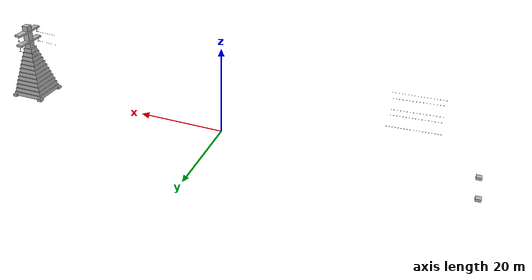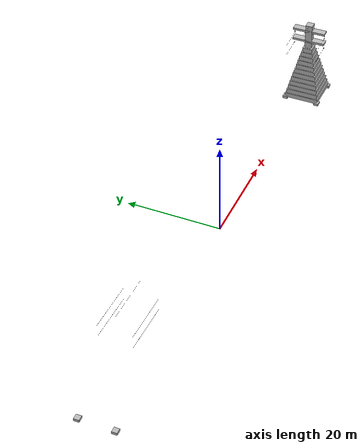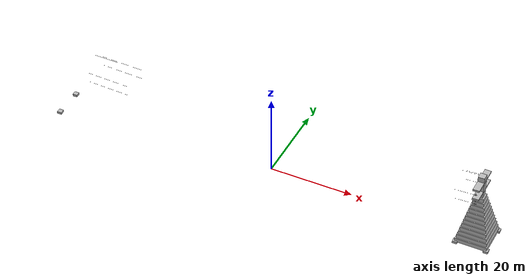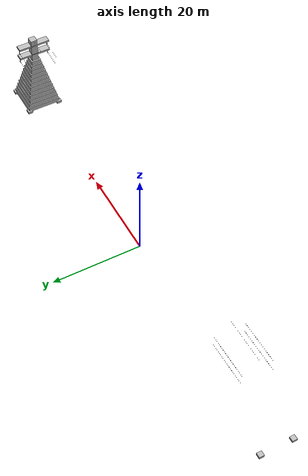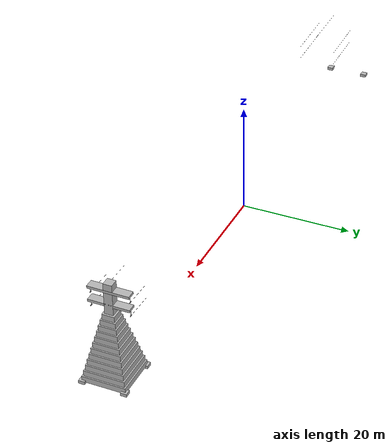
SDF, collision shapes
<sdf version="1.10">
 <model name="powerline_corridor">
  <static>true</static>
  <link name="span_collision_9">
   <collision name="footing_0_0_collision">
    <pose>-53.6 -3.6 0.05 0 0 0</pose>
    <geometry><box><size>1.1 1.1 0.55</size></box></geometry>
   </collision>
   <collision name="footing_0_1_collision">
    <pose>-53.6 3.6 0.05 0 0 0</pose>
    <geometry><box><size>1.1 1.1 0.55</size></box></geometry>
   </collision>
  </link>
  <link name="span_collision_30">
   <collision name="tower_1_envelope_0">
    <pose>50 0 0.5 0 0 0</pose>
    <geometry><box><size>7.54 7.54 1</size></box></geometry>
   </collision>
   <collision name="tower_1_envelope_1">
    <pose>50 0 1.5 0 0 0</pose>
    <geometry><box><size>7.05 7.05 1</size></box></geometry>
   </collision>
   <collision name="tower_1_envelope_2">
    <pose>50 0 2.5 0 0 0</pose>
    <geometry><box><size>6.5600000000000005 6.5600000000000005 1</size></box></geometry>
   </collision>
   <collision name="tower_1_envelope_3">
    <pose>50 0 3.5 0 0 0</pose>
    <geometry><box><size>6.07 6.07 1</size></box></geometry>
   </collision>
   <collision name="tower_1_envelope_4">
    <pose>50 0 4.5 0 0 0</pose>
    <geometry><box><size>5.58 5.58 1</size></box></geometry>
   </collision>
   <collision name="tower_1_envelope_5">
    <pose>50 0 5.5 0 0 0</pose>
    <geometry><box><size>5.09 5.09 1</size></box></geometry>
   </collision>
   <collision name="tower_1_envelope_6">
    <pose>50 0 6.5 0 0 0</pose>
    <geometry><box><size>4.6 4.6 1</size></box></geometry>
   </collision>
   <collision name="tower_1_envelope_7">
    <pose>50 0 7.5 0 0 0</pose>
    <geometry><box><size>4.11 4.11 1</size></box></geometry>
   </collision>
   <collision name="tower_1_envelope_8">
    <pose>50 0 8.5 0 0 0</pose>
    <geometry><box><size>3.62 3.62 1</size></box></geometry>
   </collision>
   <collision name="tower_1_envelope_9">
    <pose>50 0 9.5 0 0 0</pose>
    <geometry><box><size>3.13 3.13 1</size></box></geometry>
   </collision>
   <collision name="tower_1_envelope_10">
    <pose>50 0 10.5 0 0 0</pose>
    <geometry><box><size>2.6399999999999997 2.6399999999999997 1</size></box></geometry>
   </collision>
   <collision name="tower_1_envelope_11">
    <pose>50 0 11.5 0 0 0</pose>
    <geometry><box><size>2.1500000000000004 2.1500000000000004 1</size></box></geometry>
   </collision>
   <collision name="tower_1_arm_0">
    <pose>50 0 13.65 0 0 0</pose>
    <geometry><box><size>1.5 7.1 .45</size></box></geometry>
   </collision>
   <collision name="tower_1_arm_1">
    <pose>50 0 16.15 0 0 0</pose>
    <geometry><box><size>1.5 7.1 .45</size></box></geometry>
   </collision>
   <collision name="tower_1_upper_core">
    <pose>50 0 14.8 0 0 0</pose>
    <geometry><box><size>1.5 1.5 5.6</size></box></geometry>
   </collision>
   <collision name="footing_1_2_collision">
    <pose>53.6 -3.6 0.05 0 0 0</pose>
    <geometry><box><size>1.1 1.1 0.55</size></box></geometry>
   </collision>
   <collision name="footing_1_3_collision">
    <pose>53.6 3.6 0.05 0 0 0</pose>
    <geometry><box><size>1.1 1.1 0.55</size></box></geometry>
   </collision>
   <collision name="phase_0_0_core_1_collision">
    <pose>50.0 -3.35 12.837 0 0.0 0.0</pose>
    <geometry><cylinder><radius>0.035</radius><length>1.0999999999999996</length></cylinder></geometry>
   </collision>
   <collision name="phase_0_0_clamp_1_collision">
    <pose>50 -3.35 12.287 0 0 0</pose>
    <geometry><box><size>0.46 0.1 0.1</size></box></geometry>
   </collision>
   <collision name="phase_0_1_core_1_collision">
    <pose>50.0 3.35 12.837 0 0.0 0.0</pose>
    <geometry><cylinder><radius>0.035</radius><length>1.0999999999999996</length></cylinder></geometry>
   </collision>
   <collision name="phase_0_1_clamp_1_collision">
    <pose>50 3.35 12.287 0 0 0</pose>
    <geometry><box><size>0.46 0.1 0.1</size></box></geometry>
   </collision>
   <collision name="phase_1_0_core_1_collision">
    <pose>50.0 -3.35 15.337 0 0.0 0.0</pose>
    <geometry><cylinder><radius>0.035</radius><length>1.0999999999999996</length></cylinder></geometry>
   </collision>
   <collision name="phase_1_0_clamp_1_collision">
    <pose>50 -3.35 14.787 0 0 0</pose>
    <geometry><box><size>0.46 0.1 0.1</size></box></geometry>
   </collision>
   <collision name="phase_1_1_core_1_collision">
    <pose>50.0 3.35 15.337 0 0.0 0.0</pose>
    <geometry><cylinder><radius>0.035</radius><length>1.0999999999999996</length></cylinder></geometry>
   </collision>
   <collision name="phase_1_1_clamp_1_collision">
    <pose>50 3.35 14.787 0 0 0</pose>
    <geometry><box><size>0.46 0.1 0.1</size></box></geometry>
   </collision>
  </link>
  <link name="span_collision_29">
   <collision name="footing_1_0_collision">
    <pose>46.4 -3.6 0.05 0 0 0</pose>
    <geometry><box><size>1.1 1.1 0.55</size></box></geometry>
   </collision>
   <collision name="footing_1_1_collision">
    <pose>46.4 3.6 0.05 0 0 0</pose>
    <geometry><box><size>1.1 1.1 0.55</size></box></geometry>
   </collision>
   <collision name="phase_0_0_95_collision">
    <pose>45.5 -3.35 12.072168283998106 0 1.525312016177559 0.0</pose>
    <geometry><cylinder><radius>0.012</radius><length>1.0010353036791855</length></cylinder></geometry>
   </collision>
   <collision name="phase_0_0_96_collision">
    <pose>46.5 -3.35 12.118184516050576 0 1.5243130732457189 0.0</pose>
    <geometry><cylinder><radius>0.012</radius><length>1.0010813199093092</length></cylinder></geometry>
   </collision>
   <collision name="phase_0_0_97_collision">
    <pose>47.5 -3.35 12.165201829631386 0 1.5233141767299454 0.0</pose>
    <geometry><cylinder><radius>0.012</radius><length>1.0011283372209305</length></cylinder></geometry>
   </collision>
   <collision name="phase_0_0_98_collision">
    <pose>48.5 -3.35 12.213220271757926 0 1.5223153276250772 0.0</pose>
    <geometry><cylinder><radius>0.012</radius><length>1.001176355661051</length></cylinder></geometry>
   </collision>
   <collision name="phase_0_0_99_collision">
    <pose>49.5 -3.35 12.262239890448676 0 1.521316526925099 0.0</pose>
    <geometry><cylinder><radius>0.012</radius><length>1.0012253752777016</length></cylinder></geometry>
   </collision>
   <collision name="phase_0_1_95_collision">
    <pose>45.5 3.35 12.072168283998106 0 1.525312016177559 0.0</pose>
    <geometry><cylinder><radius>0.012</radius><length>1.0010353036791855</length></cylinder></geometry>
   </collision>
   <collision name="phase_0_1_96_collision">
    <pose>46.5 3.35 12.118184516050576 0 1.5243130732457189 0.0</pose>
    <geometry><cylinder><radius>0.012</radius><length>1.0010813199093092</length></cylinder></geometry>
   </collision>
   <collision name="phase_0_1_97_collision">
    <pose>47.5 3.35 12.165201829631386 0 1.5233141767299454 0.0</pose>
    <geometry><cylinder><radius>0.012</radius><length>1.0011283372209305</length></cylinder></geometry>
   </collision>
   <collision name="phase_0_1_98_collision">
    <pose>48.5 3.35 12.213220271757926 0 1.5223153276250772 0.0</pose>
    <geometry><cylinder><radius>0.012</radius><length>1.001176355661051</length></cylinder></geometry>
   </collision>
   <collision name="phase_0_1_99_collision">
    <pose>49.5 3.35 12.262239890448676 0 1.521316526925099 0.0</pose>
    <geometry><cylinder><radius>0.012</radius><length>1.0012253752777016</length></cylinder></geometry>
   </collision>
   <collision name="phase_1_0_95_collision">
    <pose>45.5 -3.35 14.572168283998106 0 1.525312016177559 0.0</pose>
    <geometry><cylinder><radius>0.012</radius><length>1.0010353036791855</length></cylinder></geometry>
   </collision>
   <collision name="phase_1_0_96_collision">
    <pose>46.5 -3.35 14.618184516050576 0 1.5243130732457189 0.0</pose>
    <geometry><cylinder><radius>0.012</radius><length>1.0010813199093092</length></cylinder></geometry>
   </collision>
   <collision name="phase_1_0_97_collision">
    <pose>47.5 -3.35 14.665201829631386 0 1.5233141767299454 0.0</pose>
    <geometry><cylinder><radius>0.012</radius><length>1.0011283372209305</length></cylinder></geometry>
   </collision>
   <collision name="phase_1_0_98_collision">
    <pose>48.5 -3.35 14.713220271757926 0 1.5223153276250772 0.0</pose>
    <geometry><cylinder><radius>0.012</radius><length>1.001176355661051</length></cylinder></geometry>
   </collision>
   <collision name="phase_1_0_99_collision">
    <pose>49.5 -3.35 14.762239890448676 0 1.521316526925099 0.0</pose>
    <geometry><cylinder><radius>0.012</radius><length>1.0012253752777016</length></cylinder></geometry>
   </collision>
   <collision name="phase_1_1_95_collision">
    <pose>45.5 3.35 14.572168283998106 0 1.525312016177559 0.0</pose>
    <geometry><cylinder><radius>0.012</radius><length>1.0010353036791855</length></cylinder></geometry>
   </collision>
   <collision name="phase_1_1_96_collision">
    <pose>46.5 3.35 14.618184516050576 0 1.5243130732457189 0.0</pose>
    <geometry><cylinder><radius>0.012</radius><length>1.0010813199093092</length></cylinder></geometry>
   </collision>
   <collision name="phase_1_1_97_collision">
    <pose>47.5 3.35 14.665201829631386 0 1.5233141767299454 0.0</pose>
    <geometry><cylinder><radius>0.012</radius><length>1.0011283372209305</length></cylinder></geometry>
   </collision>
   <collision name="phase_1_1_98_collision">
    <pose>48.5 3.35 14.713220271757926 0 1.5223153276250772 0.0</pose>
    <geometry><cylinder><radius>0.012</radius><length>1.001176355661051</length></cylinder></geometry>
   </collision>
   <collision name="phase_1_1_99_collision">
    <pose>49.5 3.35 14.762239890448676 0 1.521316526925099 0.0</pose>
    <geometry><cylinder><radius>0.012</radius><length>1.0012253752777016</length></cylinder></geometry>
   </collision>
   <collision name="earth_wire_95_collision">
    <pose>45.5 0.0 17.42117617725703 0 1.5435002626091545 0.0</pose>
    <geometry><cylinder><radius>0.008</radius><length>1.0003726532485975</length></cylinder></geometry>
   </collision>
   <collision name="earth_wire_96_collision">
    <pose>46.5 0.0 17.4487791309433 0 1.5429005030509133 0.0</pose>
    <geometry><cylinder><radius>0.008</radius><length>1.0003892146893258</length></cylinder></geometry>
   </collision>
   <collision name="earth_wire_97_collision">
    <pose>47.5 0.0 17.476982306198963 0 1.542300753529131 0.0</pose>
    <geometry><cylinder><radius>0.008</radius><length>1.0004061362557999</length></cylinder></geometry>
   </collision>
   <collision name="earth_wire_98_collision">
    <pose>48.5 0.0 17.50578571317683 0 1.5417010142600511 0.0</pose>
    <geometry><cylinder><radius>0.008</radius><length>1.0004234179540916</length></cylinder></geometry>
   </collision>
   <collision name="earth_wire_99_collision">
    <pose>49.5 0.0 17.535189362245678 0 1.5411012854587842 0.0</pose>
    <geometry><cylinder><radius>0.008</radius><length>1.000441059790435</length></cylinder></geometry>
   </collision>
  </link>
  <link name="span_collision_11">
   <collision name="phase_0_0_5_collision">
    <pose>-44.5 -3.35 12.027153087457783 0 1.6152816490584645 0.0</pose>
    <geometry><cylinder><radius>0.012</radius><length>1.0009902884845165</length></cylinder></geometry>
   </collision>
   <collision name="phase_0_0_6_collision">
    <pose>-43.5 -3.35 11.983138881414398 0 1.6142826162784136 0.0</pose>
    <geometry><cylinder><radius>0.012</radius><length>1.000946274280319</length></cylinder></geometry>
   </collision>
   <collision name="phase_0_0_7_collision">
    <pose>-42.5 -3.35 11.940125621853712 0 1.6132835400665768 0.0</pose>
    <geometry><cylinder><radius>0.012</radius><length>1.0009032610225486</length></cylinder></geometry>
   </collision>
   <collision name="phase_0_0_8_collision">
    <pose>-41.5 -3.35 11.898113265762465 0 1.6122844214189525 0.0</pose>
    <geometry><cylinder><radius>0.012</radius><length>1.0008612486682185</length></cylinder></geometry>
   </collision>
   <collision name="phase_0_0_9_collision">
    <pose>-40.5 -3.35 11.857101771128374 0 1.611285261330379 0.0</pose>
    <geometry><cylinder><radius>0.012</radius><length>1.0008202371752848</length></cylinder></geometry>
   </collision>
   <collision name="phase_0_1_5_collision">
    <pose>-44.5 3.35 12.027153087457783 0 1.6152816490584645 0.0</pose>
    <geometry><cylinder><radius>0.012</radius><length>1.0009902884845165</length></cylinder></geometry>
   </collision>
   <collision name="phase_0_1_6_collision">
    <pose>-43.5 3.35 11.983138881414398 0 1.6142826162784136 0.0</pose>
    <geometry><cylinder><radius>0.012</radius><length>1.000946274280319</length></cylinder></geometry>
   </collision>
   <collision name="phase_0_1_7_collision">
    <pose>-42.5 3.35 11.940125621853712 0 1.6132835400665768 0.0</pose>
    <geometry><cylinder><radius>0.012</radius><length>1.0009032610225486</length></cylinder></geometry>
   </collision>
   <collision name="phase_0_1_8_collision">
    <pose>-41.5 3.35 11.898113265762465 0 1.6122844214189525 0.0</pose>
    <geometry><cylinder><radius>0.012</radius><length>1.0008612486682185</length></cylinder></geometry>
   </collision>
   <collision name="phase_0_1_9_collision">
    <pose>-40.5 3.35 11.857101771128374 0 1.611285261330379 0.0</pose>
    <geometry><cylinder><radius>0.012</radius><length>1.0008202371752848</length></cylinder></geometry>
   </collision>
   <collision name="phase_1_0_5_collision">
    <pose>-44.5 -3.35 14.527153087457783 0 1.6152816490584645 0.0</pose>
    <geometry><cylinder><radius>0.012</radius><length>1.0009902884845165</length></cylinder></geometry>
   </collision>
   <collision name="phase_1_0_6_collision">
    <pose>-43.5 -3.35 14.483138881414398 0 1.6142826162784136 0.0</pose>
    <geometry><cylinder><radius>0.012</radius><length>1.000946274280319</length></cylinder></geometry>
   </collision>
   <collision name="phase_1_0_7_collision">
    <pose>-42.5 -3.35 14.440125621853712 0 1.6132835400665768 0.0</pose>
    <geometry><cylinder><radius>0.012</radius><length>1.0009032610225486</length></cylinder></geometry>
   </collision>
   <collision name="phase_1_0_8_collision">
    <pose>-41.5 -3.35 14.398113265762465 0 1.6122844214189525 0.0</pose>
    <geometry><cylinder><radius>0.012</radius><length>1.0008612486682185</length></cylinder></geometry>
   </collision>
   <collision name="phase_1_0_9_collision">
    <pose>-40.5 -3.35 14.357101771128374 0 1.611285261330379 0.0</pose>
    <geometry><cylinder><radius>0.012</radius><length>1.0008202371752848</length></cylinder></geometry>
   </collision>
   <collision name="phase_1_1_5_collision">
    <pose>-44.5 3.35 14.527153087457783 0 1.6152816490584645 0.0</pose>
    <geometry><cylinder><radius>0.012</radius><length>1.0009902884845165</length></cylinder></geometry>
   </collision>
   <collision name="phase_1_1_6_collision">
    <pose>-43.5 3.35 14.483138881414398 0 1.6142826162784136 0.0</pose>
    <geometry><cylinder><radius>0.012</radius><length>1.000946274280319</length></cylinder></geometry>
   </collision>
   <collision name="phase_1_1_7_collision">
    <pose>-42.5 3.35 14.440125621853712 0 1.6132835400665768 0.0</pose>
    <geometry><cylinder><radius>0.012</radius><length>1.0009032610225486</length></cylinder></geometry>
   </collision>
   <collision name="phase_1_1_8_collision">
    <pose>-41.5 3.35 14.398113265762465 0 1.6122844214189525 0.0</pose>
    <geometry><cylinder><radius>0.012</radius><length>1.0008612486682185</length></cylinder></geometry>
   </collision>
   <collision name="phase_1_1_9_collision">
    <pose>-40.5 3.35 14.357101771128374 0 1.611285261330379 0.0</pose>
    <geometry><cylinder><radius>0.012</radius><length>1.0008202371752848</length></cylinder></geometry>
   </collision>
   <collision name="earth_wire_5_collision">
    <pose>-44.5 0.0 17.394173435203268 0 1.5974926216010892 0.0</pose>
    <geometry><cylinder><radius>0.008</radius><length>1.0003564519276407</length></cylinder></geometry>
   </collision>
   <collision name="earth_wire_6_collision">
    <pose>-43.5 0.0 17.367770895061632 0 1.596892842615392 0.0</pose>
    <geometry><cylinder><radius>0.008</radius><length>1.0003406107206119</length></cylinder></geometry>
   </collision>
   <collision name="earth_wire_7_collision">
    <pose>-42.5 0.0 17.341968547327685 0 1.59629305423983 0.0</pose>
    <geometry><cylinder><radius>0.008</radius><length>1.0003251296218263</length></cylinder></geometry>
   </collision>
   <collision name="earth_wire_8_collision">
    <pose>-41.5 0.0 17.316766382712927 0 1.5956932566896018 0.0</pose>
    <geometry><cylinder><radius>0.008</radius><length>1.0003100086257002</length></cylinder></geometry>
   </collision>
   <collision name="earth_wire_9_collision">
    <pose>-40.5 0.0 17.292164392144805 0 1.5950934501810023 0.0</pose>
    <geometry><cylinder><radius>0.008</radius><length>1.0002952477268061</length></cylinder></geometry>
   </collision>
  </link>
  <link name="span_collision_12">
   <collision name="phase_0_0_10_collision">
    <pose>-39.5 -3.35 11.817091096939912 0 1.6102860607976321 0.0</pose>
    <geometry><cylinder><radius>0.012</radius><length>1.0007802265027759</length></cylinder></geometry>
   </collision>
   <collision name="phase_0_0_11_collision">
    <pose>-38.5 -3.35 11.778081203186305 0 1.6092868208158773 0.0</pose>
    <geometry><cylinder><radius>0.012</radius><length>1.0007412166106466</length></cylinder></geometry>
   </collision>
   <collision name="phase_0_0_12_collision">
    <pose>-37.5 -3.35 11.740072050857872 0 1.6082875423815441 0.0</pose>
    <geometry><cylinder><radius>0.012</radius><length>1.0007032074598972</length></cylinder></geometry>
   </collision>
   <collision name="phase_0_0_13_collision">
    <pose>-36.5 -3.35 11.703063601945239 0 1.6072882264916604 0.0</pose>
    <geometry><cylinder><radius>0.012</radius><length>1.0006661990125416</length></cylinder></geometry>
   </collision>
   <collision name="phase_0_0_14_collision">
    <pose>-35.5 -3.35 11.667055819440005 0 1.6062888741416288 0.0</pose>
    <geometry><cylinder><radius>0.012</radius><length>1.000630191231528</length></cylinder></geometry>
   </collision>
   <collision name="phase_0_1_10_collision">
    <pose>-39.5 3.35 11.817091096939912 0 1.6102860607976321 0.0</pose>
    <geometry><cylinder><radius>0.012</radius><length>1.0007802265027759</length></cylinder></geometry>
   </collision>
   <collision name="phase_0_1_11_collision">
    <pose>-38.5 3.35 11.778081203186305 0 1.6092868208158773 0.0</pose>
    <geometry><cylinder><radius>0.012</radius><length>1.0007412166106466</length></cylinder></geometry>
   </collision>
   <collision name="phase_0_1_12_collision">
    <pose>-37.5 3.35 11.740072050857872 0 1.6082875423815441 0.0</pose>
    <geometry><cylinder><radius>0.012</radius><length>1.0007032074598972</length></cylinder></geometry>
   </collision>
   <collision name="phase_0_1_13_collision">
    <pose>-36.5 3.35 11.703063601945239 0 1.6072882264916604 0.0</pose>
    <geometry><cylinder><radius>0.012</radius><length>1.0006661990125416</length></cylinder></geometry>
   </collision>
   <collision name="phase_0_1_14_collision">
    <pose>-35.5 3.35 11.667055819440005 0 1.6062888741416288 0.0</pose>
    <geometry><cylinder><radius>0.012</radius><length>1.000630191231528</length></cylinder></geometry>
   </collision>
   <collision name="phase_1_0_10_collision">
    <pose>-39.5 -3.35 14.317091096939912 0 1.6102860607976321 0.0</pose>
    <geometry><cylinder><radius>0.012</radius><length>1.0007802265027759</length></cylinder></geometry>
   </collision>
   <collision name="phase_1_0_11_collision">
    <pose>-38.5 -3.35 14.278081203186305 0 1.6092868208158773 0.0</pose>
    <geometry><cylinder><radius>0.012</radius><length>1.0007412166106466</length></cylinder></geometry>
   </collision>
   <collision name="phase_1_0_12_collision">
    <pose>-37.5 -3.35 14.240072050857872 0 1.6082875423815441 0.0</pose>
    <geometry><cylinder><radius>0.012</radius><length>1.0007032074598972</length></cylinder></geometry>
   </collision>
   <collision name="phase_1_0_13_collision">
    <pose>-36.5 -3.35 14.203063601945239 0 1.6072882264916604 0.0</pose>
    <geometry><cylinder><radius>0.012</radius><length>1.0006661990125416</length></cylinder></geometry>
   </collision>
   <collision name="phase_1_0_14_collision">
    <pose>-35.5 -3.35 14.167055819440005 0 1.6062888741416288 0.0</pose>
    <geometry><cylinder><radius>0.012</radius><length>1.000630191231528</length></cylinder></geometry>
   </collision>
   <collision name="phase_1_1_10_collision">
    <pose>-39.5 3.35 14.317091096939912 0 1.6102860607976321 0.0</pose>
    <geometry><cylinder><radius>0.012</radius><length>1.0007802265027759</length></cylinder></geometry>
   </collision>
   <collision name="phase_1_1_11_collision">
    <pose>-38.5 3.35 14.278081203186305 0 1.6092868208158773 0.0</pose>
    <geometry><cylinder><radius>0.012</radius><length>1.0007412166106466</length></cylinder></geometry>
   </collision>
   <collision name="phase_1_1_12_collision">
    <pose>-37.5 3.35 14.240072050857872 0 1.6082875423815441 0.0</pose>
    <geometry><cylinder><radius>0.012</radius><length>1.0007032074598972</length></cylinder></geometry>
   </collision>
   <collision name="phase_1_1_13_collision">
    <pose>-36.5 3.35 14.203063601945239 0 1.6072882264916604 0.0</pose>
    <geometry><cylinder><radius>0.012</radius><length>1.0006661990125416</length></cylinder></geometry>
   </collision>
   <collision name="phase_1_1_14_collision">
    <pose>-35.5 3.35 14.167055819440005 0 1.6062888741416288 0.0</pose>
    <geometry><cylinder><radius>0.012</radius><length>1.000630191231528</length></cylinder></geometry>
   </collision>
   <collision name="earth_wire_10_collision">
    <pose>-39.5 0.0 17.26816256676708 0 1.5944936349285252 0.0</pose>
    <geometry><cylinder><radius>0.008</radius><length>1.000280846919802</length></cylinder></geometry>
   </collision>
   <collision name="earth_wire_11_collision">
    <pose>-38.5 0.0 17.244760897939457 0 1.593893811149237 0.0</pose>
    <geometry><cylinder><radius>0.008</radius><length>1.0002668061995368</length></cylinder></geometry>
   </collision>
   <collision name="earth_wire_12_collision">
    <pose>-37.5 0.0 17.221959377237383 0 1.5932939790580103 0.0</pose>
    <geometry><cylinder><radius>0.008</radius><length>1.0002531255609368</length></cylinder></geometry>
   </collision>
   <collision name="earth_wire_13_collision">
    <pose>-36.5 0.0 17.19975799645301 0 1.5926941388701004 0.0</pose>
    <geometry><cylinder><radius>0.008</radius><length>1.0002398049990675</length></cylinder></geometry>
   </collision>
   <collision name="earth_wire_14_collision">
    <pose>-35.5 0.0 17.178156747594052 0 1.5920942908026126 0.0</pose>
    <geometry><cylinder><radius>0.008</radius><length>1.0002268445091638</length></cylinder></geometry>
   </collision>
  </link>
 </model>
</sdf>
